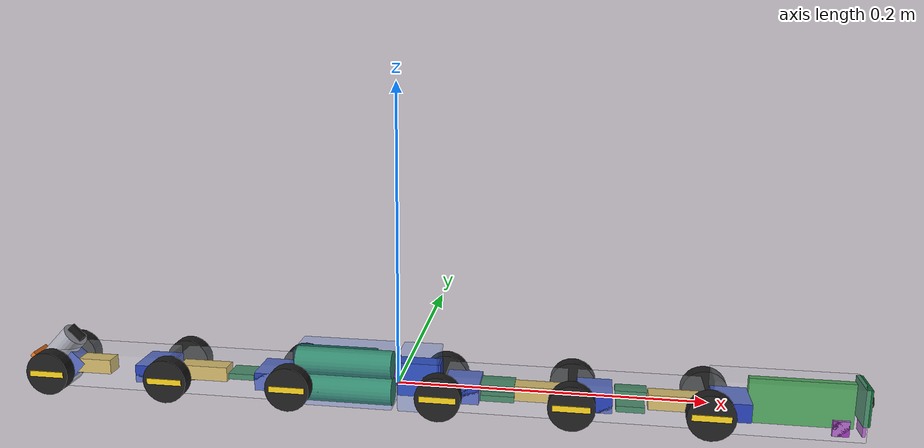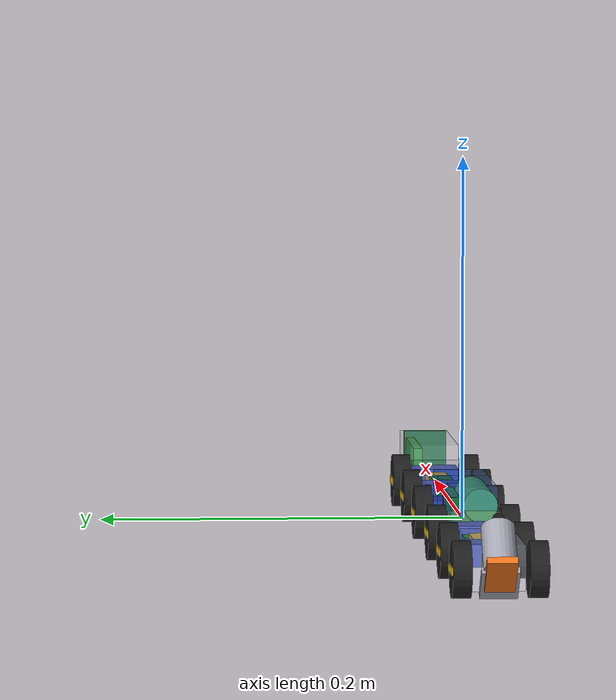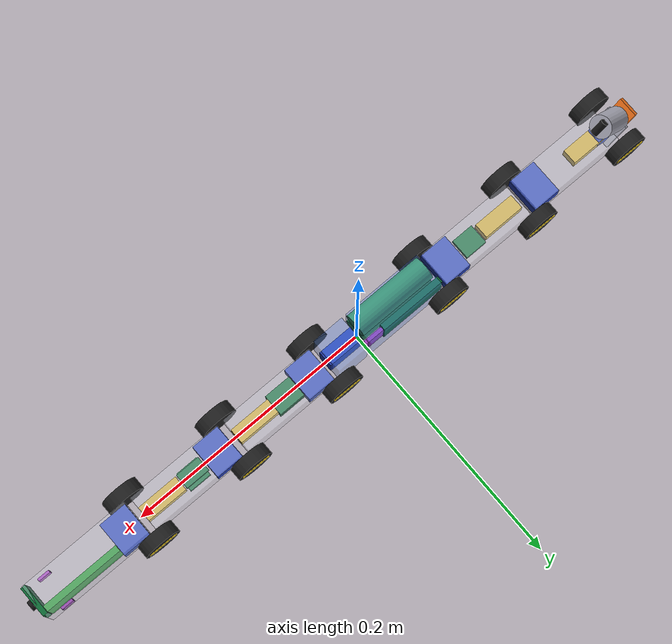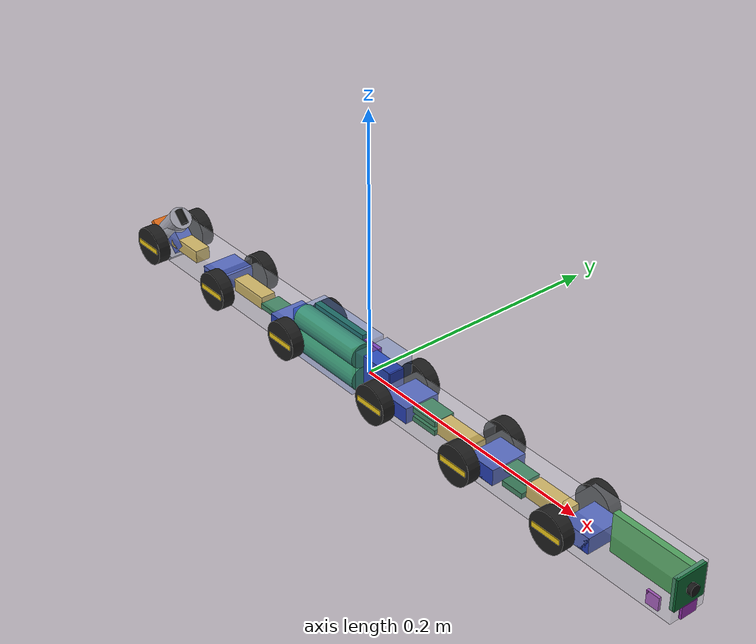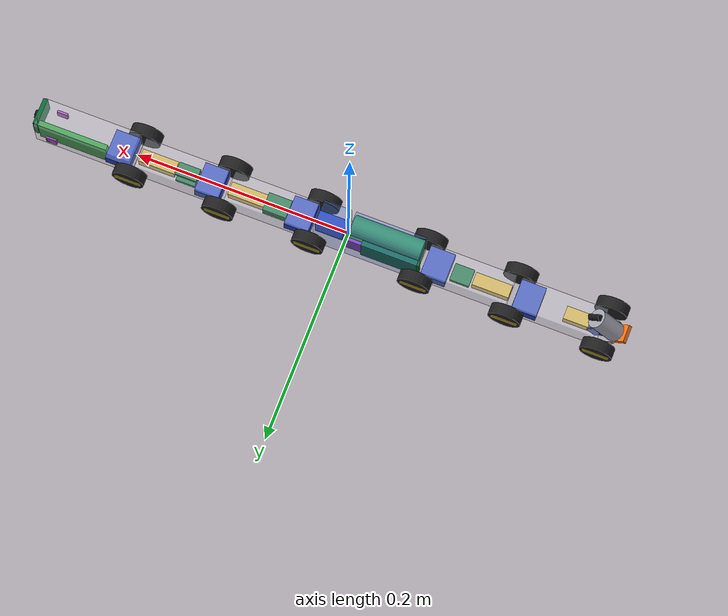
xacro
<?xml version="1.0"?>
<robot name="snake_v2" xmlns:xacro="http://www.ros.org/wiki/xacro">
  <xacro:arg name="pipe_inner_d" default="0.1008"/>
  <xacro:arg name="params_file" default=""/>
  <xacro:arg name="suspension" default="all"/>
  <xacro:include filename="$(find pipe_robot_sim)/models/common/common.xacro"/>

  <!-- ===== 치수 ===== -->
  <xacro:property name="Rp" value="${$(arg pipe_inner_d)/2}"/>
  <xacro:property name="L" value="0.085"/>       <!-- V 팔 (관절 ~ 관절) -->
  <xacro:arg name="hub_len" default="0.030"/>
  <xacro:property name="Lhub" value="$(arg hub_len)"/>   <!-- J3 ~ J4 (허브: 비틀기 서보) -->
  <xacro:property name="Lmid" value="${0.100 - Lhub}"/>   <!-- J2 ~ J3 (가운데 몸통: 배터리). J2~J4 = 100 mm -->
  <xacro:arg name="head_len" default="0.095"/>
  <xacro:arg name="tip_probe" default="true"/>   <!-- 현재 방식 (D안): 뒤 V 꼬리 끝 탐촉자 -->
  <xacro:property name="Lh" value="$(arg head_len)"/>   <!-- 머리 (J6 ~ 앞 끝) -->
  <xacro:property name="W" value="0.028"/>       <!-- 몸체 폭 (바퀴 안쪽 면 사이 30 mm) -->
  <xacro:property name="Ta" value="0.024"/>      <!-- 팔 두께 -->
  <xacro:property name="zb" value="-0.014"/>     <!-- 가운데·허브·머리 아랫면 (벽 쪽) -->
  <xacro:property name="zt" value="0.024"/>      <!-- 가운데·허브 윗면 (배관 중심 쪽). 24 넘으면 J3 로 90° 돌 때 벽에 닿음 -->
  <xacro:property name="zth" value="0.020"/>     <!-- 머리 윗면 -->
  <xacro:property name="rw" value="0.015"/>      <!-- 바퀴 반경 (Ø30) -->
  <xacro:property name="ww" value="0.010"/>
  <xacro:arg name="wheel_y" default="0.020"/>
  <xacro:property name="yw" value="$(arg wheel_y)"/>   <!-- 바퀴 중심 좌우 위치 (±) -->

  <!-- 몸체 껍데기 질량 (PLA, 추정) -->
  <!-- 팔 껍데기 + 무게추. 부품 합(서보·N20 약 26 g)과 합쳐 팔 하나 약 70 g. 팔이 약 40 g 이면 엘보 안에서 멈춤
       (snake_v 에서 하나씩 바꿔 가며 확인, 2026-10-21). 실물은 무게추 또는 무거운 부품(배터리 등)을 팔로 -->
  <xacro:property name="m_arm" value="0.042"/>
  <xacro:property name="m_mid" value="0.018"/>
  <xacro:property name="m_hub" value="0.008"/>
  <xacro:property name="m_head" value="0.014"/>
  <xacro:property name="m_wheel" value="0.006"/>  <!-- 3D 프린팅 + O링 -->
  <!-- 부품 질량 (추정, 판매처 표기 또는 비슷한 제품 기준) -->
  <xacro:property name="m_servo" value="0.0134"/> <!-- MG90S -->
  <xacro:property name="m_n20" value="0.012"/>    <!-- N20 1:100 + 엔코더 -->

  <xacro:arg name="motor_stall" default="0.147"/>   <!-- 바퀴 모터 스톨 토크 [N·m] (robot.yaml motor_stall_torque 와 같게) -->
  <xacro:property name="wheel_damping" value="${$(arg motor_stall)/16.8}"/>
  <xacro:property name="mu_wheel" value="0.8"/>

  <!-- 관절 서보 토크 한계 [N·m]: snake_v 와 같게 둠 (비교용). MG90S 는 약 0.2 라서 부족 -> 서보 선정 필요 -->
  <xacro:arg name="servo_tmax" default="0"/>   <!-- 0 이 아니면 모든 관절 서보 토크 한계를 이 값으로 (실물 서보 시험) -->
  <xacro:property name="ts" value="$(arg servo_tmax)"/>
  <xacro:property name="t_clamp" value="${ts if ts > 0 else 1.2}"/>
  <xacro:property name="t_hold" value="${ts if ts > 0 else 1.0}"/>
  <xacro:property name="t_roll" value="${ts if ts > 0 else 1.0}"/>
  <xacro:property name="jlim" value="${radians(120)}"/>
  <xacro:property name="servo_damping" value="0.07"/>   <!-- snake_v 참고 (d_gain 대신 관절 damping) -->

  <material name="shell"><color rgba="0.85 0.87 0.92 0.30"/></material>
  <material name="shell_blue"><color rgba="0.30 0.50 0.90 0.30"/></material>
  <material name="c_servo"><color rgba="0.15 0.25 0.70 1"/></material>
  <material name="c_motor"><color rgba="0.80 0.65 0.20 1"/></material>
  <material name="c_cell"><color rgba="0.20 0.60 0.30 1"/></material>
  <material name="c_pcb"><color rgba="0.05 0.40 0.20 1"/></material>
  <material name="c_pi"><color rgba="0.10 0.55 0.15 1"/></material>
  <material name="c_sensor"><color rgba="0.60 0.20 0.70 1"/></material>
  <material name="c_ut"><color rgba="0.95 0.45 0.10 1"/></material>
  <material name="c_hv"><color rgba="0.85 0.10 0.10 1"/></material>
  <material name="c_pump"><color rgba="0.10 0.60 0.70 1"/></material>
  <material name="c_tank"><color rgba="0.50 0.85 0.95 0.6"/></material>
  <material name="c_dark"><color rgba="0.08 0.08 0.08 1"/></material>
  <material name="c_metal"><color rgba="0.65 0.65 0.70 1"/></material>
  <material name="tire_black"><color rgba="0.12 0.12 0.12 1"/></material>
  <material name="mark_yellow"><color rgba="0.95 0.80 0.10 1"/></material>

  <!-- ===== 매크로 ===== -->
  <!-- 부품 상자: 부모 링크에 고정 (Gazebo 에서는 부모 링크 질량에 합쳐짐) -->
  <xacro:macro name="part" params="name parent xyz sx sy sz mass mat">
    <joint name="${name}_fix" type="fixed">
      <parent link="${parent}"/>
      <child link="${name}"/>
      <origin xyz="${xyz}" rpy="0 0 0"/>
    </joint>
    <link name="${name}">
      <visual><geometry><box size="${sx} ${sy} ${sz}"/></geometry><material name="${mat}"/></visual>
      <xacro:inertial_box m="${mass}" x="${sx}" y="${sy}" z="${sz}"/>
    </link>
  </xacro:macro>
  <!-- 부품 원통 (기본: 축 = x) -->
  <xacro:macro name="part_cyl" params="name parent xyz r l mass mat rpy:='0 ${pi/2} 0'">
    <joint name="${name}_fix" type="fixed">
      <parent link="${parent}"/>
      <child link="${name}"/>
      <origin xyz="${xyz}" rpy="${rpy}"/>
    </joint>
    <link name="${name}">
      <visual><geometry><cylinder radius="${r}" length="${l}"/></geometry><material name="${mat}"/></visual>
      <xacro:inertial_cyl m="${mass}" r="${r}" l="${l}"/>
    </link>
  </xacro:macro>

  <!-- V 팔: dir = +1 이면 관절에서 +x 로, -1 이면 -x 로. 충돌체는 양 끝 바퀴 자리만큼 짧게 -->
  <xacro:macro name="arm_link" params="name dir">
    <link name="${name}">
      <visual>
        <origin xyz="${dir*L/2} 0 0" rpy="0 0 0"/>
        <geometry><box size="${L - 0.006} ${W} ${Ta}"/></geometry>
        <material name="shell"/>
      </visual>
      <collision>
        <origin xyz="${dir*L/2} 0 0" rpy="0 0 0"/>
        <geometry><box size="${L - 2*rw*1.1} ${W} ${Ta}"/></geometry>
      </collision>
      <xacro:inertial_box m="${m_arm}" x="${L}" y="${W}" z="${Ta}" xyz="${dir*L/2} 0 0"/>
    </link>
  </xacro:macro>

  <!-- 바퀴 한 쌍. spin = -1: 위 벽에 닿는 꼭짓점 바퀴 (축을 뒤집어 같은 + 속도에 앞으로) -->
  <xacro:macro name="wheel_pair" params="name parent x spin:=1">
    <xacro:wheel name="${name}_l" parent="${parent}" x="${x}" side="1" spin="${spin}"/>
    <xacro:wheel name="${name}_r" parent="${parent}" x="${x}" side="-1" spin="${spin}"/>
  </xacro:macro>
  <xacro:macro name="wheel" params="name parent x side spin">
    <joint name="${name}_joint" type="continuous">
      <parent link="${parent}"/>
      <child link="${name}"/>
      <origin xyz="${x} ${side*yw} 0" rpy="0 0 0"/>
      <axis xyz="0 ${spin} 0"/>
      <dynamics damping="${wheel_damping}" friction="0"/>
    </joint>
    <link name="${name}">
      <visual>
        <origin xyz="0 0 0" rpy="${pi/2} 0 0"/>
        <geometry><cylinder radius="${rw}" length="${ww}"/></geometry>
        <material name="tire_black"/>
      </visual>
      <visual>
        <origin xyz="0 ${side*ww/2} 0" rpy="${pi/2} 0 0"/>
        <geometry><box size="${1.6*rw} 0.004 0.001"/></geometry>
        <material name="mark_yellow"/>
      </visual>
      <collision>
        <geometry><sphere radius="${rw}"/></geometry>
      </collision>
      <xacro:inertial_cyl m="${m_wheel}" r="${rw}" l="${ww}" rpy="${pi/2} 0 0"/>
    </link>
    <xacro:friction link="${name}" mu="${mu_wheel}"/>
    <xacro:joint_force joint="${name}_joint"/>
  </xacro:macro>

  <xacro:macro name="pitch_joint" params="name parent child x tmax">
    <joint name="${name}" type="revolute">
      <parent link="${parent}"/>
      <child link="${child}"/>
      <origin xyz="${x} 0 0" rpy="0 0 0"/>
      <axis xyz="0 1 0"/>
      <limit lower="${-jlim}" upper="${jlim}" effort="${tmax}" velocity="3.0"/>
      <dynamics damping="${servo_damping}" friction="0"/>
    </joint>
    <xacro:joint_servo joint="${name}" p="2" d="0" tmax="${tmax}"/>
  </xacro:macro>

  <!-- 관절 하나에 서보 + (구동이면) N20. 서보는 관절 쪽 끝, N20 은 반대쪽 끝 (바퀴 축까지 기어로) -->
  <xacro:macro name="arm_parts" params="link dir servo motor:=''">
    <xacro:part name="p_${servo}_servo" parent="${link}" xyz="${dir*0.014} 0 0" sx="0.023" sy="0.028" sz="0.0122"
                mass="${m_servo}" mat="c_servo"/>
    <xacro:if value="${motor != ''}">
      <xacro:part name="p_${motor}_n20" parent="${link}" xyz="${dir*(L - 0.020)} 0 0" sx="0.034" sy="0.012" sz="0.010"
                  mass="${m_n20}" mat="c_motor"/>
    </xacro:if>
  </xacro:macro>

  <!-- 단일점·다중점 ToF (gpu_lidar). 화면(DISPLAY)이 있어야 값이 나옴 -->
  <xacro:macro name="tof" params="name parent xyz rpy topic hs vs hfov vfov rmin rmax rate">
    <joint name="${name}_joint" type="fixed">
      <parent link="${parent}"/>
      <child link="${name}_link"/>
      <origin xyz="${xyz}" rpy="${rpy}"/>
    </joint>
    <link name="${name}_link"/>
    <gazebo reference="${name}_link">
      <sensor name="${name}" type="gpu_lidar">
        <topic>${topic}</topic>
        <update_rate>${rate}</update_rate>
        <always_on>1</always_on>
        <visualize>false</visualize>
        <ray>
          <scan>
            <horizontal><samples>${hs}</samples><resolution>1</resolution>
              <min_angle>${-hfov/2}</min_angle><max_angle>${hfov/2}</max_angle></horizontal>
            <vertical><samples>${vs}</samples><resolution>1</resolution>
              <min_angle>${-vfov/2}</min_angle><max_angle>${vfov/2}</max_angle></vertical>
          </scan>
          <range><min>${rmin}</min><max>${rmax}</max><resolution>0.001</resolution></range>
          <noise><type>gaussian</type><mean>0</mean><stddev>0.005</stddev></noise>
        </ray>
      </sensor>
    </gazebo>
  </xacro:macro>

  <!-- ===== 허브 (base_link, J3 ~ J4): 비틀기 서보 ===== -->
  <link name="base_link">
    <visual>
      <origin xyz="${Lhub/2} 0 ${(zb+zt)/2}" rpy="0 0 0"/>
      <geometry><box size="${Lhub - 0.004} ${W} ${zt - zb}"/></geometry>
      <material name="shell_blue"/>
    </visual>
    <collision>
      <origin xyz="${Lhub/2} 0 ${(zb+zt)/2}" rpy="0 0 0"/>
      <geometry><box size="${Lhub - 0.006} ${W} ${zt - zb}"/></geometry>
    </collision>
    <xacro:inertial_box m="${m_hub}" x="${Lhub}" y="${W}" z="${zt - zb}" xyz="${Lhub/2} 0 ${(zb+zt)/2}"/>
  </link>
  <xacro:part name="p_j3_servo" parent="base_link" xyz="0.015 0 0.005" sx="0.0285" sy="0.0122" sz="0.0228"
              mass="${m_servo}" mat="c_servo"/>

  <!-- J3: 비틀기 (축 x) -->
  <joint name="j3_joint" type="revolute">
    <parent link="base_link"/>
    <child link="mid_rear"/>
    <origin xyz="0 0 0" rpy="0 0 0"/>
    <axis xyz="1 0 0"/>
    <limit lower="${-pi}" upper="${pi}" effort="${t_roll}" velocity="3.0"/>
    <dynamics damping="${servo_damping}" friction="0"/>
  </joint>
  <xacro:joint_servo joint="j3_joint" p="10" d="0" tmax="${t_roll}"/>

  <!-- ===== 가운데 몸통 (mid_rear, J2 ~ J3): 18650 x2 (위아래로 쌓음), 메인 ESP32, IMU ===== -->
  <link name="mid_rear">
    <visual>
      <origin xyz="${-Lmid/2} 0 ${(zb+zt)/2}" rpy="0 0 0"/>
      <geometry><box size="${Lmid - 0.004} ${W} ${zt - zb}"/></geometry>
      <material name="shell_blue"/>
    </visual>
    <collision>
      <origin xyz="${-Lmid/2} 0 ${(zb+zt)/2}" rpy="0 0 0"/>
      <geometry><box size="${Lmid - 0.006} ${W} ${zt - zb}"/></geometry>
    </collision>
    <xacro:inertial_box m="${m_mid}" x="${Lmid}" y="${W}" z="${zt - zb}" xyz="${-Lmid/2} 0 ${(zb+zt)/2}"/>
  </link>
  <xacro:part_cyl name="p_cell_a" parent="mid_rear" xyz="-0.035 -0.0047 -0.0046" r="0.0093" l="0.065" mass="0.048" mat="c_cell"/>
  <xacro:part_cyl name="p_cell_b" parent="mid_rear" xyz="-0.035 -0.0047 0.0141" r="0.0093" l="0.065" mass="0.048" mat="c_cell"/>
  <xacro:part name="p_esp32_main" parent="mid_rear" xyz="-0.043 0.0093 0.005" sx="0.054" sy="0.005" sz="0.028"
              mass="0.009" mat="c_pcb"/>
  <xacro:part name="p_mpu6050" parent="mid_rear" xyz="-0.008 0.0093 0.005" sx="0.016" sy="0.003" sz="0.021"
              mass="0.002" mat="c_sensor"/>

  <!-- ===== 앞쪽: J4(w4) ─ f1 ─ J5(w5) ─ f2 ─ J6(w6) ─ 머리 ===== -->
  <xacro:wheel_pair name="w4" parent="base_link" x="${Lhub}"/>
  <xacro:pitch_joint name="j4_joint" parent="base_link" child="f1" x="${Lhub}" tmax="${t_hold}"/>
  <xacro:arm_link name="f1" dir="1"/>
  <xacro:arm_parts link="f1" dir="1" servo="j4" motor="w5"/>
  <xacro:part name="p_mp1584_logic" parent="f1" xyz="0.037 0 0.0035" sx="0.022" sy="0.017" sz="0.004" mass="0.002" mat="c_pcb"/>
  <xacro:part name="p_mp1584_servo" parent="f1" xyz="0.037 0 -0.0035" sx="0.022" sy="0.017" sz="0.004" mass="0.002" mat="c_pcb"/>
  <xacro:wheel_pair name="w5" parent="f1" x="${L}" spin="-1"/>
  <xacro:pitch_joint name="j5_joint" parent="f1" child="f2" x="${L}" tmax="${t_clamp}"/>
  <xacro:arm_link name="f2" dir="1"/>
  <xacro:arm_parts link="f2" dir="1" servo="j5" motor="w6"/>
  <xacro:part name="p_drv8833_front" parent="f2" xyz="0.037 0 -0.005" sx="0.018" sy="0.016" sz="0.004" mass="0.002" mat="c_pcb"/>
  <xacro:part name="p_bms" parent="f2" xyz="0.037 0 0.005" sx="0.020" sy="0.012" sz="0.003" mass="0.003" mat="c_pcb"/>
  <xacro:wheel_pair name="w6" parent="f2" x="${L}"/>
  <xacro:pitch_joint name="j6_joint" parent="f2" child="head" x="${L}" tmax="${t_hold}"/>

  <!-- 머리: J6 서보, Pi Zero 2 W (세워서), 카메라 + LED, ToF 3개 -->
  <link name="head">
    <visual>
      <origin xyz="${Lh/2} 0 ${(zb+zth)/2}" rpy="0 0 0"/>
      <geometry><box size="${Lh - 0.004} ${W} ${zth - zb}"/></geometry>
      <material name="shell"/>
    </visual>
    <collision>
      <origin xyz="${(rw*1.1 + Lh)/2} 0 ${(zb+zth)/2}" rpy="0 0 0"/>
      <geometry><box size="${Lh - rw*1.1} ${W} ${zth - zb}"/></geometry>
    </collision>
    <xacro:inertial_box m="${m_head}" x="${Lh}" y="${W}" z="${zth - zb}" xyz="${Lh/2} 0 ${(zb+zth)/2}"/>
  </link>
  <xacro:part name="p_j6_servo" parent="head" xyz="0.014 0 0" sx="0.023" sy="0.028" sz="0.0122" mass="${m_servo}" mat="c_servo"/>
  <xacro:part name="p_pi_zero" parent="head" xyz="0.058 0.008 0.001" sx="0.065" sy="0.005" sz="0.030" mass="0.011" mat="c_pi"/>
  <xacro:part name="p_camera" parent="head" xyz="0.0925 -0.001 0.008" sx="0.004" sy="0.025" sz="0.024" mass="0.003" mat="c_pcb"/>
  <xacro:part_cyl name="p_lens" parent="head" xyz="0.0960 -0.001 0.008" r="0.004" l="0.004" mass="0.001" mat="c_dark"/>
  <xacro:part name="p_vl53l7cx" parent="head" xyz="0.0935 0 -0.009" sx="0.002" sy="0.013" sz="0.009" mass="0.001" mat="c_sensor"/>
  <xacro:part name="p_vl6180_l" parent="head" xyz="0.078 0.013 -0.006" sx="0.010" sy="0.002" sz="0.010" mass="0.0015" mat="c_sensor"/>
  <xacro:part name="p_vl6180_r" parent="head" xyz="0.078 -0.013 -0.006" sx="0.010" sy="0.002" sz="0.010" mass="0.0015" mat="c_sensor"/>
  <!-- 전방 VL53L7CX: 8x8, 60°x60°, 2 cm ~ 3.5 m, 8x8 모드 최대 15 Hz -->
  <xacro:tof name="tof_front" parent="head" xyz="${Lh + 0.001} 0 -0.009" rpy="0 0 0" topic="/tof/front"
             hs="8" vs="8" hfov="${radians(60)}" vfov="${radians(60)}" rmin="0.02" rmax="3.5" rate="15"/>
  <!-- 좌우 VL6180: 한 점, 0.5 ~ 20 cm (데이터시트 기본 10 cm, 조건 좋으면 더) -->
  <xacro:tof name="tof_left" parent="head" xyz="0.078 0.0145 -0.006" rpy="0 0 ${pi/2}" topic="/tof/left"
             hs="1" vs="1" hfov="0" vfov="0" rmin="0.005" rmax="0.2" rate="30"/>
  <xacro:tof name="tof_right" parent="head" xyz="0.078 -0.0145 -0.006" rpy="0 0 ${-pi/2}" topic="/tof/right"
             hs="1" vs="1" hfov="0" vfov="0" rmin="0.005" rmax="0.2" rate="30"/>

  <!-- ===== 뒤쪽: J2(w3) ─ r2 ─ J1(w2) ─ r1 ─ w1 ===== -->
  <xacro:wheel_pair name="w3" parent="mid_rear" x="${-Lmid}"/>
  <xacro:pitch_joint name="j2_joint" parent="mid_rear" child="r2" x="${-Lmid}" tmax="${t_hold}"/>
  <xacro:arm_link name="r2" dir="-1"/>
  <xacro:arm_parts link="r2" dir="-1" servo="j2" motor="w2"/>
  <xacro:part name="p_drv8833_rear" parent="r2" xyz="-0.037 0 0" sx="0.018" sy="0.016" sz="0.004" mass="0.002" mat="c_pcb"/>
  <xacro:wheel_pair name="w2" parent="r2" x="${-L}" spin="-1"/>
  <xacro:pitch_joint name="j1_joint" parent="r2" child="r1" x="${-L}" tmax="${t_clamp}"/>
  <xacro:arm_link name="r1" dir="-1"/>
  <xacro:arm_parts link="r1" dir="-1" servo="j1" motor="w1"/>
  <xacro:wheel_pair name="w1" parent="r1" x="${-L}"/>

  <xacro:if value="$(arg tip_probe)">
    <xacro:property name="th_v" value="${asin(min(1.0, 2*sqrt((Rp - rw)**2 - yw**2)/L))}"/>
    <joint name="probe_mount_fix" type="fixed">
      <parent link="r1"/>
      <child link="probe_mount"/>
      <origin xyz="${-L - 0.010} 0 0" rpy="0 ${th_v} 0"/>
    </joint>
    <link name="probe_mount">
      <visual><origin xyz="0.010 0 0" rpy="0 0 0"/><geometry><box size="0.022 0.020 0.004"/></geometry><material name="c_metal"/></visual>
      <xacro:inertial_box m="0.004" x="0.022" y="0.020" z="0.004" xyz="0.010 0 0"/>
    </link>
    <xacro:part name="p_sg90" parent="probe_mount" xyz="0.008 0 0.012" sx="0.023" sy="0.012" sz="0.016" mass="0.009" mat="c_servo"/>
    <joint name="probe_lift_joint" type="prismatic">   <!-- 0 = 듦 (슈 면이 마운트에서 4 mm), 0.0115 = 벽(약 14 mm) + 1 mm -->
      <parent link="probe_mount"/>
      <child link="probe_carrier"/>
      <origin xyz="0 0 -0.004" rpy="0 0 0"/>
      <axis xyz="0 0 -1"/>
      <limit lower="0" upper="0.0115" effort="3" velocity="0.1"/>
      <dynamics damping="5" friction="0"/>
    </joint>
    <xacro:joint_servo joint="probe_lift_joint" p="400" d="0" tmax="3"/>
    <link name="probe_carrier">
      <inertial><mass value="0.003"/><inertia ixx="1e-7" iyy="1e-7" izz="1e-7" ixy="0" ixz="0" iyz="0"/></inertial>
    </link>
    <xacro:macro name="tip_tilt" params="name parent child axis xyz:='0 0 0'">
      <joint name="${name}" type="revolute">
        <parent link="${parent}"/>
        <child link="${child}"/>
        <origin xyz="${xyz}" rpy="0 0 0"/>
        <axis xyz="${axis}"/>
        <limit lower="-0.2" upper="0.2" effort="1" velocity="5"/>
        <dynamics damping="0.0005" friction="0"/>
      </joint>
      <xacro:joint_spring joint="${name}" k="0.02" ref="0"/>
    </xacro:macro>
    <xacro:tip_tilt name="probe_tilt_x_joint" parent="probe_carrier" child="probe_tilt" axis="1 0 0" xyz="0 0 0.006"/>
    <link name="probe_tilt">
      <inertial><mass value="0.002"/><inertia ixx="1e-7" iyy="1e-7" izz="1e-7" ixy="0" ixz="0" iyz="0"/></inertial>
    </link>
    <xacro:tip_tilt name="probe_tilt_y_joint" parent="probe_tilt" child="probe" axis="0 1 0" xyz="0 0 -0.006"/>
    <link name="probe">   <!-- 원점 = 슈 바깥면 중심, -z 가 벽 쪽 -->
      <visual><origin xyz="0 0 0.002" rpy="0 0 0"/><geometry><box size="0.025 0.016 0.004"/></geometry><material name="c_ut"/></visual>
      <visual><origin xyz="0 0 0.018" rpy="0 0 0"/><geometry><cylinder radius="0.009" length="0.028"/></geometry>
        <material name="c_metal"/></visual>
      <visual><origin xyz="0 0 0.034" rpy="0 ${pi/2} 0"/><geometry><cylinder radius="0.003" length="0.012"/></geometry>
        <material name="c_dark"/></visual>   <!-- 직결 동축선 (BNC 는 커서 뺌) -->
      <collision><origin xyz="0 0 0.002" rpy="0 0 0"/><geometry><box size="0.025 0.016 0.004"/></geometry></collision>
      <xacro:inertial_cyl m="0.028" r="0.009" l="0.028" xyz="0 0 0.016"/>
    </link>
    <xacro:friction link="probe" mu="0.3"/>
  </xacro:if>

  <!-- ===== 시뮬 플러그인 (IMU = 가운데 몸통의 MPU6050 자리) ===== -->
  <xacro:sim_common imu_parent="mid_rear" imu_xyz="-0.008 0.0093 0.005"/>
</robot>

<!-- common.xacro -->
<!-- 모델 공통 매크로: 관성, 옴니휠(롤러), 시뮬 플러그인 (docs/02 규약)
     단위 m, kg, rad. 함수는 sin, cos, asin, atan2, sqrt, radians, pi 만 씀 (VS Code URDF Visualizer와 xacro 둘 다 지원) -->
<robot xmlns:xacro="http://www.ros.org/wiki/xacro">

  <!-- ===== 관성 (아주 작은 값은 1e-8을 더해 0이 되지 않게) ===== -->
  <xacro:macro name="inertial_box" params="m x y z xyz:='0 0 0' rpy:='0 0 0'">
    <inertial>
      <origin xyz="${xyz}" rpy="${rpy}"/>
      <mass value="${m}"/>
      <inertia ixx="${m*(y*y+z*z)/12 + 1e-8}" ixy="0" ixz="0" iyy="${m*(x*x+z*z)/12 + 1e-8}" iyz="0"
               izz="${m*(x*x+y*y)/12 + 1e-8}"/>
    </inertial>
  </xacro:macro>

  <!-- 원기둥: 축은 origin 회전 후의 z -->
  <xacro:macro name="inertial_cyl" params="m r l xyz:='0 0 0' rpy:='0 0 0'">
    <inertial>
      <origin xyz="${xyz}" rpy="${rpy}"/>
      <mass value="${m}"/>
      <inertia ixx="${m*(3*r*r+l*l)/12 + 1e-8}" ixy="0" ixz="0" iyy="${m*(3*r*r+l*l)/12 + 1e-8}" iyz="0"
               izz="${m*r*r/2 + 1e-8}"/>
    </inertial>
  </xacro:macro>

  <xacro:macro name="inertial_sphere" params="m r xyz:='0 0 0'">
    <inertial>
      <origin xyz="${xyz}" rpy="0 0 0"/>
      <mass value="${m}"/>
      <inertia ixx="${0.4*m*r*r + 1e-8}" ixy="0" ixz="0" iyy="${0.4*m*r*r + 1e-8}" iyz="0" izz="${0.4*m*r*r + 1e-8}"/>
    </inertial>
  </xacro:macro>

  <!-- spin = -1: 위 벽에 닿는 바퀴 (축을 뒤집어 같은 + 속도 명령에 앞으로 감) -->
  <xacro:macro name="omni_wheel" params="name parent xyz R width n rr row hub_mass roller_mass mu damping spin:=1">
    <joint name="${name}_joint" type="continuous">
      <parent link="${parent}"/>
      <child link="${name}"/>
      <origin xyz="${xyz}" rpy="0 0 0"/>
      <axis xyz="0 ${spin} 0"/>
      <dynamics damping="${damping}" friction="0"/>
    </joint>
    <link name="${name}">
      <visual>
        <origin xyz="0 0 0" rpy="${pi/2} 0 0"/>
        <geometry><cylinder radius="${R - 1.6*rr}" length="${width*0.8}"/></geometry>
        <material name="omni_hub"><color rgba="0.75 0.75 0.78 1"/></material>
      </visual>
      <xacro:inertial_cyl m="${hub_mass}" r="${R - rr}" l="${width}" rpy="${pi/2} 0 0"/>
    </link>
    <xacro:omni_rollers hub="${name}" n="${n}" i="0" R="${R}" rr="${rr}" y="${-row}" phase="0"
                        m="${roller_mass}" mu="${mu}" tag="a"/>
    <xacro:omni_rollers hub="${name}" n="${n}" i="0" R="${R}" rr="${rr}" y="${row}" phase="${pi/n}"
                        m="${roller_mass}" mu="${mu}" tag="b"/>
  </xacro:macro>

  <!-- 롤러 한 줄 (재귀). 롤러 중심은 허브 중심에서 R-rr, 축은 접선 (-sin, 0, cos) -->
  <xacro:macro name="omni_rollers" params="hub n i R rr y phase m mu tag">
    <xacro:if value="${i &lt; n}">
      <joint name="${hub}_${tag}${i}_joint" type="continuous">
        <parent link="${hub}"/>
        <child link="${hub}_${tag}${i}"/>
        <origin xyz="${(R-rr)*cos(2*pi*i/n + phase)} ${y} ${(R-rr)*sin(2*pi*i/n + phase)}" rpy="0 0 0"/>
        <axis xyz="${-sin(2*pi*i/n + phase)} 0 ${cos(2*pi*i/n + phase)}"/>
        <dynamics damping="0.00001" friction="0"/>
      </joint>
      <link name="${hub}_${tag}${i}">
        <visual>
          <origin xyz="0 0 0" rpy="0 ${-(2*pi*i/n + phase)} 0"/>
          <geometry><cylinder radius="${rr}" length="${1.5*rr}"/></geometry>
          <material name="omni_roller"><color rgba="0.25 0.25 0.25 1"/></material>
        </visual>
        <collision>
          <geometry><sphere radius="${rr}"/></geometry>
        </collision>
        <xacro:inertial_sphere m="${m}" r="${rr}"/>
      </link>
      <gazebo reference="${hub}_${tag}${i}">
        <mu1>${mu}</mu1>
        <mu2>${mu}</mu2>
      </gazebo>
      <xacro:omni_rollers hub="${hub}" n="${n}" i="${i+1}" R="${R}" rr="${rr}" y="${y}" phase="${phase}"
                          m="${m}" mu="${mu}" tag="${tag}"/>
    </xacro:if>
  </xacro:macro>

  <!-- ===== 시뮬 플러그인 (docs/02 규약) ===== -->

  <!-- 관절 상태, 정답 위치, IMU (imu_link 를 parent 에 고정) -->
  <xacro:macro name="sim_common" params="imu_parent imu_xyz:='0 0 0'">
    <joint name="imu_joint" type="fixed">
      <parent link="${imu_parent}"/>
      <child link="imu_link"/>
      <origin xyz="${imu_xyz}" rpy="0 0 0"/>
    </joint>
    <link name="imu_link"/>
    <gazebo reference="imu_link">
      <sensor name="imu" type="imu">
        <always_on>1</always_on>
        <update_rate>200</update_rate>
        <topic>/imu</topic>
        <imu>
          <!-- MPU6050 수준 노이즈 (docs/08) -->
          <angular_velocity>
            <x><noise type="gaussian"><mean>0</mean><stddev>0.0012</stddev></noise></x>
            <y><noise type="gaussian"><mean>0</mean><stddev>0.0012</stddev></noise></y>
            <z><noise type="gaussian"><mean>0</mean><stddev>0.0012</stddev></noise></z>
          </angular_velocity>
          <linear_acceleration>
            <x><noise type="gaussian"><mean>0</mean><stddev>0.055</stddev></noise></x>
            <y><noise type="gaussian"><mean>0</mean><stddev>0.055</stddev></noise></y>
            <z><noise type="gaussian"><mean>0</mean><stddev>0.055</stddev></noise></z>
          </linear_acceleration>
        </imu>
      </sensor>
    </gazebo>
    <gazebo>
      <plugin filename="ignition-gazebo-joint-state-publisher-system"
              name="ignition::gazebo::systems::JointStatePublisher">
        <topic>/joint_states</topic>
      </plugin>
      <plugin filename="ignition-gazebo-odometry-publisher-system"
              name="ignition::gazebo::systems::OdometryPublisher">
        <odom_frame>world</odom_frame>
        <robot_base_frame>base_link</robot_base_frame>
        <odom_topic>/ground_truth/odom</odom_topic>
        <odom_publish_frequency>100</odom_publish_frequency>
        <dimensions>3</dimensions>
      </plugin>
    </gazebo>
  </xacro:macro>

  <xacro:macro name="joint_force" params="joint">
    <gazebo>
      <plugin filename="ignition-gazebo-apply-joint-force-system"
              name="ignition::gazebo::systems::ApplyJointForce">
        <joint_name>${joint}</joint_name>
      </plugin>
    </gazebo>
  </xacro:macro>

  <xacro:macro name="joint_servo" params="joint p d tmax">
    <gazebo>
      <plugin filename="ignition-gazebo-joint-position-controller-system"
              name="ignition::gazebo::systems::JointPositionController">
        <joint_name>${joint}</joint_name>
        <topic>/servo/${joint}</topic>
        <p_gain>${p}</p_gain>
        <i_gain>0</i_gain>
        <d_gain>${d}</d_gain>
        <cmd_max>${tmax}</cmd_max>
        <cmd_min>${-tmax}</cmd_min>
      </plugin>
    </gazebo>
  </xacro:macro>

  <!-- 토션 스프링 관절: 토크 = -k (q - ref) -->
  <xacro:macro name="joint_spring" params="joint k ref">
    <gazebo reference="${joint}">
      <springReference>${ref}</springReference>
      <springStiffness>${k}</springStiffness>
      <implicitSpringDamper>true</implicitSpringDamper>
    </gazebo>
  </xacro:macro>

  <xacro:macro name="friction" params="link mu">
    <gazebo reference="${link}">
      <mu1>${mu}</mu1>
      <mu2>${mu}</mu2>
    </gazebo>
  </xacro:macro>

</robot>
